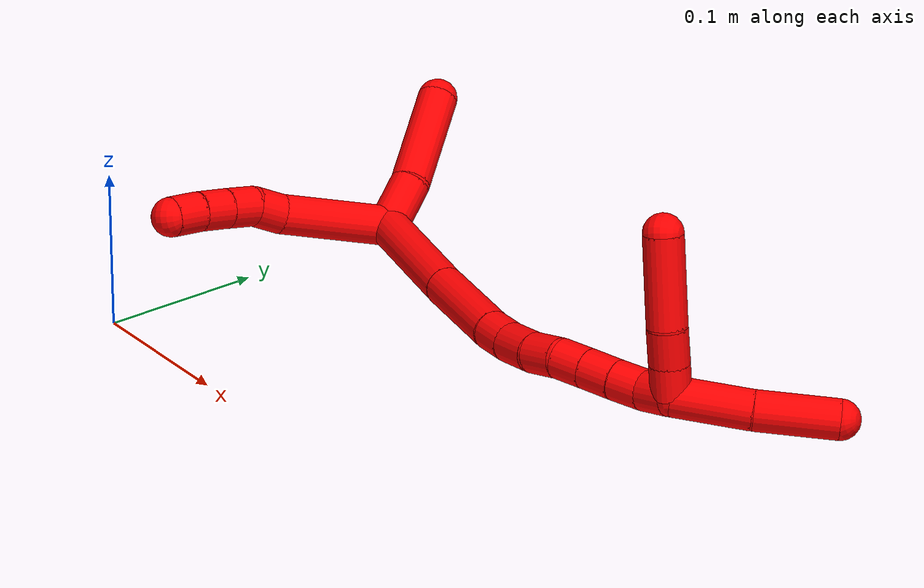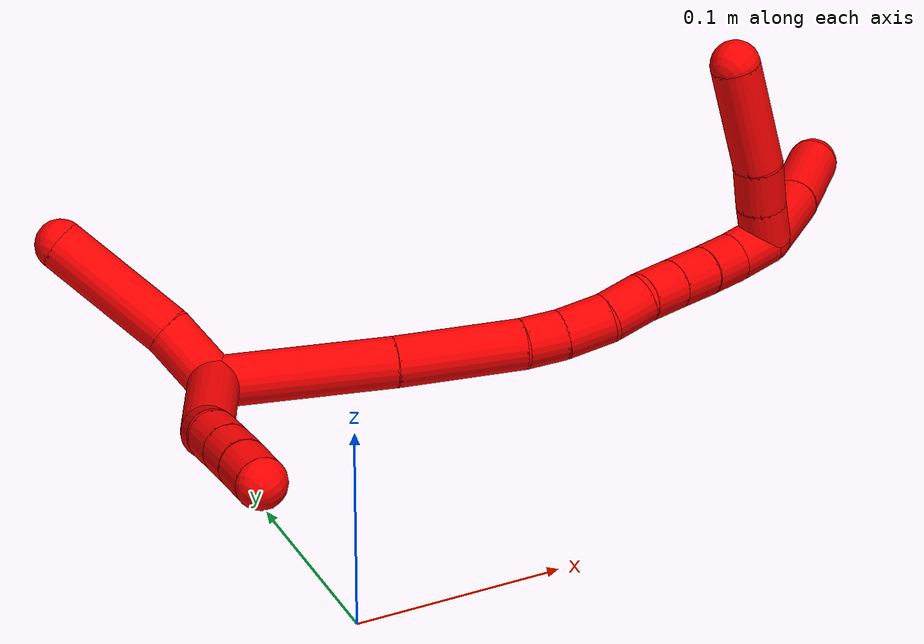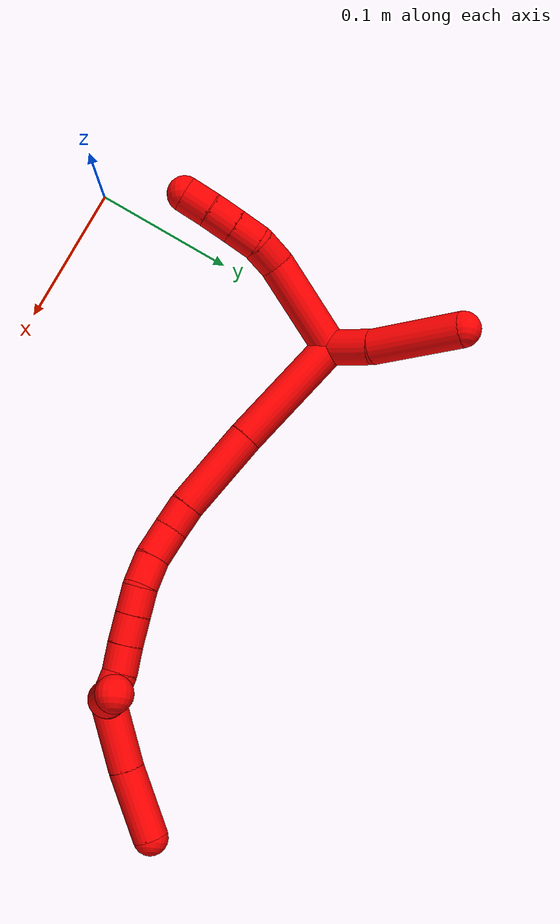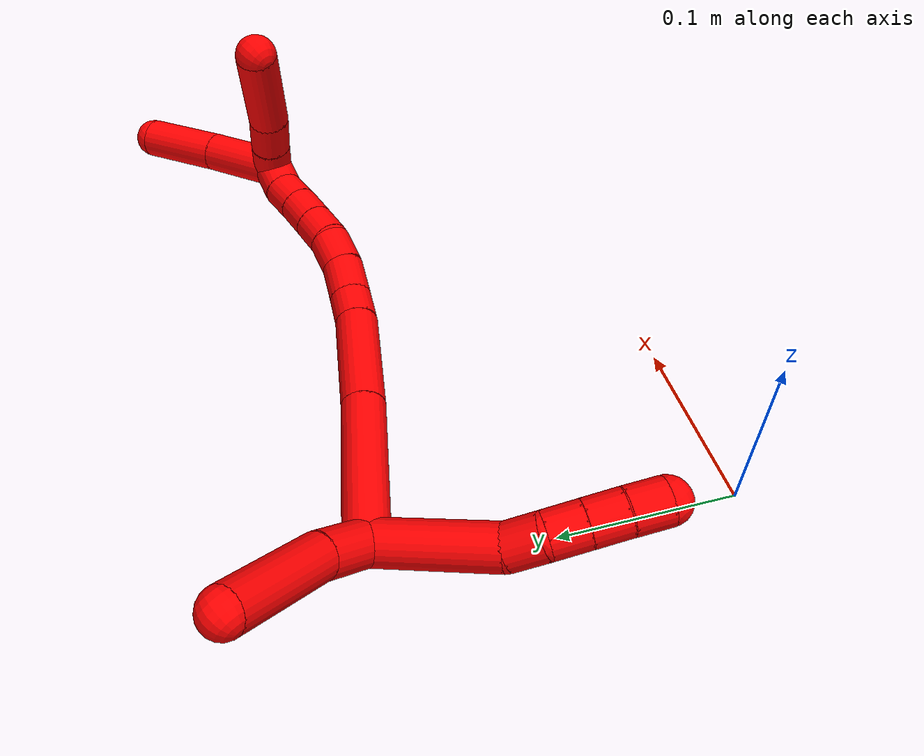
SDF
<sdf version="1.7">
 <world name="default">
  <model name="2">
   <static>0</static>
   <link name="2">
    <collision name="collision-cylinder-e_1_2_8">
     <pose>-0.011632 -0.021554 -0.024527 2.42062 -0.342219 -0.859636</pose>
     <geometry><cylinder><radius>0.0125</radius><length>0.069324</length></cylinder></geometry>
     <surface>
      <friction><ode><mu>1.16</mu><mu2>1.16</mu2><slip1>0</slip1><slip2>0</slip2></ode></friction>
      <contact><ode><kp>1e+06</kp><kd>1</kd><max_vel>0</max_vel><min_depth>0.001</min_depth></ode></contact>
     </surface>
    </collision>
    <visual name="visual-cylinder-e_1_2_8">
     <pose>-0.011632 -0.021554 -0.024527 2.42062 -0.342219 -0.859636</pose>
     <geometry><cylinder><radius>0.0125</radius><length>0.069324</length></cylinder></geometry>
     <material><ambient>1 0 0 1</ambient></material>
    </visual>
    <collision name="collision-cylinder-e_2_8_9">
     <pose>-0.028386 -0.050543 -0.053748 2.13403 -0.527475 -0.911021</pose>
     <geometry><cylinder><radius>0.0125</radius><length>0.020351</length></cylinder></geometry>
     <surface>
      <friction><ode><mu>1.16</mu><mu2>1.16</mu2><slip1>0</slip1><slip2>0</slip2></ode></friction>
      <contact><ode><kp>1e+06</kp><kd>1</kd><max_vel>0</max_vel><min_depth>0.001</min_depth></ode></contact>
     </surface>
    </collision>
    <visual name="visual-cylinder-e_2_8_9">
     <pose>-0.028386 -0.050543 -0.053748 2.13403 -0.527475 -0.911021</pose>
     <geometry><cylinder><radius>0.0125</radius><length>0.020351</length></cylinder></geometry>
     <material><ambient>1 0 0 1</ambient></material>
    </visual>
    <collision name="collision-cylinder-e_3_9_10">
     <pose>-0.035683 -0.066725 -0.062854 2.0379 -0.218562 -0.352726</pose>
     <geometry><cylinder><radius>0.0125</radius><length>0.020072</length></cylinder></geometry>
     <surface>
      <friction><ode><mu>1.16</mu><mu2>1.16</mu2><slip1>0</slip1><slip2>0</slip2></ode></friction>
      <contact><ode><kp>1e+06</kp><kd>1</kd><max_vel>0</max_vel><min_depth>0.001</min_depth></ode></contact>
     </surface>
    </collision>
    <visual name="visual-cylinder-e_3_9_10">
     <pose>-0.035683 -0.066725 -0.062854 2.0379 -0.218562 -0.352726</pose>
     <geometry><cylinder><radius>0.0125</radius><length>0.020072</length></cylinder></geometry>
     <material><ambient>1 0 0 1</ambient></material>
    </visual>
    <collision name="collision-cylinder-e_4_10_11">
     <pose>-0.039859 -0.084264 -0.071656 2.0339 -0.200742 -0.322872</pose>
     <geometry><cylinder><radius>0.0125</radius><length>0.020056</length></cylinder></geometry>
     <surface>
      <friction><ode><mu>1.16</mu><mu2>1.16</mu2><slip1>0</slip1><slip2>0</slip2></ode></friction>
      <contact><ode><kp>1e+06</kp><kd>1</kd><max_vel>0</max_vel><min_depth>0.001</min_depth></ode></contact>
     </surface>
    </collision>
    <visual name="visual-cylinder-e_4_10_11">
     <pose>-0.039859 -0.084264 -0.071656 2.0339 -0.200742 -0.322872</pose>
     <geometry><cylinder><radius>0.0125</radius><length>0.020056</length></cylinder></geometry>
     <material><ambient>1 0 0 1</ambient></material>
    </visual>
    <collision name="collision-cylinder-e_5_11_6">
     <pose>-0.043169 -0.102018 -0.080511 2.03301 -0.130149 -0.209772</pose>
     <geometry><cylinder><radius>0.0125</radius><length>0.020197</length></cylinder></geometry>
     <surface>
      <friction><ode><mu>1.16</mu><mu2>1.16</mu2><slip1>0</slip1><slip2>0</slip2></ode></friction>
      <contact><ode><kp>1e+06</kp><kd>1</kd><max_vel>0</max_vel><min_depth>0.001</min_depth></ode></contact>
     </surface>
    </collision>
    <visual name="visual-cylinder-e_5_11_6">
     <pose>-0.043169 -0.102018 -0.080511 2.03301 -0.130149 -0.209772</pose>
     <geometry><cylinder><radius>0.0125</radius><length>0.020197</length></cylinder></geometry>
     <material><ambient>1 0 0 1</ambient></material>
    </visual>
    <collision name="collision-cylinder-e_1_2_12">
     <pose>-0.009583 0.01335 0.0028 -1.36403 -0.612453 0.502609</pose>
     <geometry><cylinder><radius>0.0125</radius><length>0.033341</length></cylinder></geometry>
     <surface>
      <friction><ode><mu>1.16</mu><mu2>1.16</mu2><slip1>0</slip1><slip2>0</slip2></ode></friction>
      <contact><ode><kp>1e+06</kp><kd>1</kd><max_vel>0</max_vel><min_depth>0.001</min_depth></ode></contact>
     </surface>
    </collision>
    <visual name="visual-cylinder-e_1_2_12">
     <pose>-0.009583 0.01335 0.0028 -1.36403 -0.612453 0.502609</pose>
     <geometry><cylinder><radius>0.0125</radius><length>0.033341</length></cylinder></geometry>
     <material><ambient>1 0 0 1</ambient></material>
    </visual>
    <collision name="collision-cylinder-e_2_12_5">
     <pose>-0.03856 0.053804 0.005211 -1.58518 -0.620997 0.629413</pose>
     <geometry><cylinder><radius>0.0125</radius><length>0.066659</length></cylinder></geometry>
     <surface>
      <friction><ode><mu>1.16</mu><mu2>1.16</mu2><slip1>0</slip1><slip2>0</slip2></ode></friction>
      <contact><ode><kp>1e+06</kp><kd>1</kd><max_vel>0</max_vel><min_depth>0.001</min_depth></ode></contact>
     </surface>
    </collision>
    <visual name="visual-cylinder-e_2_12_5">
     <pose>-0.03856 0.053804 0.005211 -1.58518 -0.620997 0.629413</pose>
     <geometry><cylinder><radius>0.0125</radius><length>0.066659</length></cylinder></geometry>
     <material><ambient>1 0 0 1</ambient></material>
    </visual>
    <collision name="collision-cylinder-e_1_2_13">
     <pose>0.011339 -0.027467 0.032049 0.708555 0.262439 0.097556</pose>
     <geometry><cylinder><radius>0.0125</radius><length>0.08741</length></cylinder></geometry>
     <surface>
      <friction><ode><mu>1.16</mu><mu2>1.16</mu2><slip1>0</slip1><slip2>0</slip2></ode></friction>
      <contact><ode><kp>1e+06</kp><kd>1</kd><max_vel>0</max_vel><min_depth>0.001</min_depth></ode></contact>
     </surface>
    </collision>
    <visual name="visual-cylinder-e_1_2_13">
     <pose>0.011339 -0.027467 0.032049 0.708555 0.262439 0.097556</pose>
     <geometry><cylinder><radius>0.0125</radius><length>0.08741</length></cylinder></geometry>
     <material><ambient>1 0 0 1</ambient></material>
    </visual>
    <collision name="collision-cylinder-e_2_13_14">
     <pose>0.030832 -0.073797 0.08831 0.661874 0.259694 0.089668</pose>
     <geometry><cylinder><radius>0.0125</radius><length>0.063514</length></cylinder></geometry>
     <surface>
      <friction><ode><mu>1.16</mu><mu2>1.16</mu2><slip1>0</slip1><slip2>0</slip2></ode></friction>
      <contact><ode><kp>1e+06</kp><kd>1</kd><max_vel>0</max_vel><min_depth>0.001</min_depth></ode></contact>
     </surface>
    </collision>
    <visual name="visual-cylinder-e_2_13_14">
     <pose>0.030832 -0.073797 0.08831 0.661874 0.259694 0.089668</pose>
     <geometry><cylinder><radius>0.0125</radius><length>0.063514</length></cylinder></geometry>
     <material><ambient>1 0 0 1</ambient></material>
    </visual>
    <collision name="collision-cylinder-e_3_14_15">
     <pose>0.041352 -0.097705 0.12097 0.538285 0.235829 0.06533</pose>
     <geometry><cylinder><radius>0.0125</radius><length>0.020241</length></cylinder></geometry>
     <surface>
      <friction><ode><mu>1.16</mu><mu2>1.16</mu2><slip1>0</slip1><slip2>0</slip2></ode></friction>
      <contact><ode><kp>1e+06</kp><kd>1</kd><max_vel>0</max_vel><min_depth>0.001</min_depth></ode></contact>
     </surface>
    </collision>
    <visual name="visual-cylinder-e_3_14_15">
     <pose>0.041352 -0.097705 0.12097 0.538285 0.235829 0.06533</pose>
     <geometry><cylinder><radius>0.0125</radius><length>0.020241</length></cylinder></geometry>
     <material><ambient>1 0 0 1</ambient></material>
    </visual>
    <collision name="collision-cylinder-e_4_15_16">
     <pose>0.045142 -0.108613 0.139989 0.506409 0.11742 0.030416</pose>
     <geometry><cylinder><radius>0.0125</radius><length>0.024342</length></cylinder></geometry>
     <surface>
      <friction><ode><mu>1.16</mu><mu2>1.16</mu2><slip1>0</slip1><slip2>0</slip2></ode></friction>
      <contact><ode><kp>1e+06</kp><kd>1</kd><max_vel>0</max_vel><min_depth>0.001</min_depth></ode></contact>
     </surface>
    </collision>
    <visual name="visual-cylinder-e_4_15_16">
     <pose>0.045142 -0.108613 0.139989 0.506409 0.11742 0.030416</pose>
     <geometry><cylinder><radius>0.0125</radius><length>0.024342</length></cylinder></geometry>
     <material><ambient>1 0 0 1</ambient></material>
    </visual>
    <collision name="collision-cylinder-e_5_16_17">
     <pose>0.047366 -0.11788 0.16089 0.318381 0.073211 0.011759</pose>
     <geometry><cylinder><radius>0.0125</radius><length>0.021814</length></cylinder></geometry>
     <surface>
      <friction><ode><mu>1.16</mu><mu2>1.16</mu2><slip1>0</slip1><slip2>0</slip2></ode></friction>
      <contact><ode><kp>1e+06</kp><kd>1</kd><max_vel>0</max_vel><min_depth>0.001</min_depth></ode></contact>
     </surface>
    </collision>
    <visual name="visual-cylinder-e_5_16_17">
     <pose>0.047366 -0.11788 0.16089 0.318381 0.073211 0.011759</pose>
     <geometry><cylinder><radius>0.0125</radius><length>0.021814</length></cylinder></geometry>
     <material><ambient>1 0 0 1</ambient></material>
    </visual>
    <collision name="collision-cylinder-e_6_17_18">
     <pose>0.050955 -0.123099 0.180736 0.188372 0.280618 0.026683</pose>
     <geometry><cylinder><radius>0.0125</radius><length>0.02016</length></cylinder></geometry>
     <surface>
      <friction><ode><mu>1.16</mu><mu2>1.16</mu2><slip1>0</slip1><slip2>0</slip2></ode></friction>
      <contact><ode><kp>1e+06</kp><kd>1</kd><max_vel>0</max_vel><min_depth>0.001</min_depth></ode></contact>
     </surface>
    </collision>
    <visual name="visual-cylinder-e_6_17_18">
     <pose>0.050955 -0.123099 0.180736 0.188372 0.280618 0.026683</pose>
     <geometry><cylinder><radius>0.0125</radius><length>0.02016</length></cylinder></geometry>
     <material><ambient>1 0 0 1</ambient></material>
    </visual>
    <collision name="collision-cylinder-e_7_18_19">
     <pose>0.056794 -0.126776 0.200214 0.184815 0.291999 0.027252</pose>
     <geometry><cylinder><radius>0.0125</radius><length>0.021171</length></cylinder></geometry>
     <surface>
      <friction><ode><mu>1.16</mu><mu2>1.16</mu2><slip1>0</slip1><slip2>0</slip2></ode></friction>
      <contact><ode><kp>1e+06</kp><kd>1</kd><max_vel>0</max_vel><min_depth>0.001</min_depth></ode></contact>
     </surface>
    </collision>
    <visual name="visual-cylinder-e_7_18_19">
     <pose>0.056794 -0.126776 0.200214 0.184815 0.291999 0.027252</pose>
     <geometry><cylinder><radius>0.0125</radius><length>0.021171</length></cylinder></geometry>
     <material><ambient>1 0 0 1</ambient></material>
    </visual>
    <collision name="collision-cylinder-e_8_19_20">
     <pose>0.062826 -0.129973 0.21994 0.135812 0.294153 0.02015</pose>
     <geometry><cylinder><radius>0.0125</radius><length>0.020589</length></cylinder></geometry>
     <surface>
      <friction><ode><mu>1.16</mu><mu2>1.16</mu2><slip1>0</slip1><slip2>0</slip2></ode></friction>
      <contact><ode><kp>1e+06</kp><kd>1</kd><max_vel>0</max_vel><min_depth>0.001</min_depth></ode></contact>
     </surface>
    </collision>
    <visual name="visual-cylinder-e_8_19_20">
     <pose>0.062826 -0.129973 0.21994 0.135812 0.294153 0.02015</pose>
     <geometry><cylinder><radius>0.0125</radius><length>0.020589</length></cylinder></geometry>
     <material><ambient>1 0 0 1</ambient></material>
    </visual>
    <collision name="collision-cylinder-e_9_20_1">
     <pose>0.066589 -0.134538 0.239535 0.317486 0.075078 0.012025</pose>
     <geometry><cylinder><radius>0.0125</radius><length>0.02076</length></cylinder></geometry>
     <surface>
      <friction><ode><mu>1.16</mu><mu2>1.16</mu2><slip1>0</slip1><slip2>0</slip2></ode></friction>
      <contact><ode><kp>1e+06</kp><kd>1</kd><max_vel>0</max_vel><min_depth>0.001</min_depth></ode></contact>
     </surface>
    </collision>
    <visual name="visual-cylinder-e_9_20_1">
     <pose>0.066589 -0.134538 0.239535 0.317486 0.075078 0.012025</pose>
     <geometry><cylinder><radius>0.0125</radius><length>0.02076</length></cylinder></geometry>
     <material><ambient>1 0 0 1</ambient></material>
    </visual>
    <collision name="collision-cylinder-e_1_1_21">
     <pose>0.074941 -0.129804 0.271086 -0.351508 0.316393 -0.056645</pose>
     <geometry><cylinder><radius>0.0125</radius><length>0.048681</length></cylinder></geometry>
     <surface>
      <friction><ode><mu>1.16</mu><mu2>1.16</mu2><slip1>0</slip1><slip2>0</slip2></ode></friction>
      <contact><ode><kp>1e+06</kp><kd>1</kd><max_vel>0</max_vel><min_depth>0.001</min_depth></ode></contact>
     </surface>
    </collision>
    <visual name="visual-cylinder-e_1_1_21">
     <pose>0.074941 -0.129804 0.271086 -0.351508 0.316393 -0.056645</pose>
     <geometry><cylinder><radius>0.0125</radius><length>0.048681</length></cylinder></geometry>
     <material><ambient>1 0 0 1</ambient></material>
    </visual>
    <collision name="collision-cylinder-e_2_21_4">
     <pose>0.089377 -0.11166 0.315336 -0.424314 0.270755 -0.058662</pose>
     <geometry><cylinder><radius>0.0125</radius><length>0.051319</length></cylinder></geometry>
     <surface>
      <friction><ode><mu>1.16</mu><mu2>1.16</mu2><slip1>0</slip1><slip2>0</slip2></ode></friction>
      <contact><ode><kp>1e+06</kp><kd>1</kd><max_vel>0</max_vel><min_depth>0.001</min_depth></ode></contact>
     </surface>
    </collision>
    <visual name="visual-cylinder-e_2_21_4">
     <pose>0.089377 -0.11166 0.315336 -0.424314 0.270755 -0.058662</pose>
     <geometry><cylinder><radius>0.0125</radius><length>0.051319</length></cylinder></geometry>
     <material><ambient>1 0 0 1</ambient></material>
    </visual>
    <collision name="collision-cylinder-e_1_1_22">
     <pose>0.05727 -0.137946 0.250674 0.134503 -1.44104 -0.118133</pose>
     <geometry><cylinder><radius>0.0125</radius><length>0.020366</length></cylinder></geometry>
     <surface>
      <friction><ode><mu>1.16</mu><mu2>1.16</mu2><slip1>0</slip1><slip2>0</slip2></ode></friction>
      <contact><ode><kp>1e+06</kp><kd>1</kd><max_vel>0</max_vel><min_depth>0.001</min_depth></ode></contact>
     </surface>
    </collision>
    <visual name="visual-cylinder-e_1_1_22">
     <pose>0.05727 -0.137946 0.250674 0.134503 -1.44104 -0.118133</pose>
     <geometry><cylinder><radius>0.0125</radius><length>0.020366</length></cylinder></geometry>
     <material><ambient>1 0 0 1</ambient></material>
    </visual>
    <collision name="collision-cylinder-e_2_22_23">
     <pose>0.03573 -0.138793 0.253629 0.386211 -1.41642 -0.331852</pose>
     <geometry><cylinder><radius>0.0125</radius><length>0.023161</length></cylinder></geometry>
     <surface>
      <friction><ode><mu>1.16</mu><mu2>1.16</mu2><slip1>0</slip1><slip2>0</slip2></ode></friction>
      <contact><ode><kp>1e+06</kp><kd>1</kd><max_vel>0</max_vel><min_depth>0.001</min_depth></ode></contact>
     </surface>
    </collision>
    <visual name="visual-cylinder-e_2_22_23">
     <pose>0.03573 -0.138793 0.253629 0.386211 -1.41642 -0.331852</pose>
     <geometry><cylinder><radius>0.0125</radius><length>0.023161</length></cylinder></geometry>
     <material><ambient>1 0 0 1</ambient></material>
    </visual>
    <collision name="collision-cylinder-e_3_23_3">
     <pose>-0.003726 -0.137431 0.258186 -0.610184 -1.44484 0.541491</pose>
     <geometry><cylinder><radius>0.0125</radius><length>0.056473</length></cylinder></geometry>
     <surface>
      <friction><ode><mu>1.16</mu><mu2>1.16</mu2><slip1>0</slip1><slip2>0</slip2></ode></friction>
      <contact><ode><kp>1e+06</kp><kd>1</kd><max_vel>0</max_vel><min_depth>0.001</min_depth></ode></contact>
     </surface>
    </collision>
    <visual name="visual-cylinder-e_3_23_3">
     <pose>-0.003726 -0.137431 0.258186 -0.610184 -1.44484 0.541491</pose>
     <geometry><cylinder><radius>0.0125</radius><length>0.056473</length></cylinder></geometry>
     <material><ambient>1 0 0 1</ambient></material>
    </visual>
    <collision name="collision-sphere-3">
     <pose>-0.031739 -0.135399 0.261093 0 -0 0</pose>
     <geometry><sphere><radius>0.0125</radius></sphere></geometry>
     <surface>
      <friction><ode><mu>1.16</mu><mu2>1.16</mu2><slip1>0</slip1><slip2>0</slip2></ode></friction>
      <contact><ode><kp>1e+06</kp><kd>1</kd><max_vel>0</max_vel><min_depth>0.001</min_depth></ode></contact>
     </surface>
    </collision>
    <visual name="visual-sphere-3">
     <pose>-0.031739 -0.135399 0.261093 0 -0 0</pose>
     <geometry><sphere><radius>0.0125</radius></sphere></geometry>
     <material><ambient>1 0 0 1</ambient></material>
    </visual>
    <collision name="collision-sphere-23">
     <pose>0.024287 -0.139464 0.255279 0 -0 0</pose>
     <geometry><sphere><radius>0.0125</radius></sphere></geometry>
     <surface>
      <friction><ode><mu>1.16</mu><mu2>1.16</mu2><slip1>0</slip1><slip2>0</slip2></ode></friction>
      <contact><ode><kp>1e+06</kp><kd>1</kd><max_vel>0</max_vel><min_depth>0.001</min_depth></ode></contact>
     </surface>
    </collision>
    <visual name="visual-sphere-23">
     <pose>0.024287 -0.139464 0.255279 0 -0 0</pose>
     <geometry><sphere><radius>0.0125</radius></sphere></geometry>
     <material><ambient>1 0 0 1</ambient></material>
    </visual>
    <collision name="collision-sphere-22">
     <pose>0.047172 -0.138122 0.25198 0 -0 0</pose>
     <geometry><sphere><radius>0.0125</radius></sphere></geometry>
     <surface>
      <friction><ode><mu>1.16</mu><mu2>1.16</mu2><slip1>0</slip1><slip2>0</slip2></ode></friction>
      <contact><ode><kp>1e+06</kp><kd>1</kd><max_vel>0</max_vel><min_depth>0.001</min_depth></ode></contact>
     </surface>
    </collision>
    <visual name="visual-sphere-22">
     <pose>0.047172 -0.138122 0.25198 0 -0 0</pose>
     <geometry><sphere><radius>0.0125</radius></sphere></geometry>
     <material><ambient>1 0 0 1</ambient></material>
    </visual>
    <collision name="collision-sphere-4">
     <pose>0.09624 -0.101481 0.337868 0 -0 0</pose>
     <geometry><sphere><radius>0.0125</radius></sphere></geometry>
     <surface>
      <friction><ode><mu>1.16</mu><mu2>1.16</mu2><slip1>0</slip1><slip2>0</slip2></ode></friction>
      <contact><ode><kp>1e+06</kp><kd>1</kd><max_vel>0</max_vel><min_depth>0.001</min_depth></ode></contact>
     </surface>
    </collision>
    <visual name="visual-sphere-4">
     <pose>0.09624 -0.101481 0.337868 0 -0 0</pose>
     <geometry><sphere><radius>0.0125</radius></sphere></geometry>
     <material><ambient>1 0 0 1</ambient></material>
    </visual>
    <collision name="collision-sphere-21">
     <pose>0.082514 -0.121839 0.292804 0 -0 0</pose>
     <geometry><sphere><radius>0.0125</radius></sphere></geometry>
     <surface>
      <friction><ode><mu>1.16</mu><mu2>1.16</mu2><slip1>0</slip1><slip2>0</slip2></ode></friction>
      <contact><ode><kp>1e+06</kp><kd>1</kd><max_vel>0</max_vel><min_depth>0.001</min_depth></ode></contact>
     </surface>
    </collision>
    <visual name="visual-sphere-21">
     <pose>0.082514 -0.121839 0.292804 0 -0 0</pose>
     <geometry><sphere><radius>0.0125</radius></sphere></geometry>
     <material><ambient>1 0 0 1</ambient></material>
    </visual>
    <collision name="collision-sphere-1">
     <pose>0.067367 -0.137769 0.249368 0 -0 0</pose>
     <geometry><sphere><radius>0.0125</radius></sphere></geometry>
     <surface>
      <friction><ode><mu>1.16</mu><mu2>1.16</mu2><slip1>0</slip1><slip2>0</slip2></ode></friction>
      <contact><ode><kp>1e+06</kp><kd>1</kd><max_vel>0</max_vel><min_depth>0.001</min_depth></ode></contact>
     </surface>
    </collision>
    <visual name="visual-sphere-1">
     <pose>0.067367 -0.137769 0.249368 0 -0 0</pose>
     <geometry><sphere><radius>0.0125</radius></sphere></geometry>
     <material><ambient>1 0 0 1</ambient></material>
    </visual>
    <collision name="collision-sphere-6">
     <pose>-0.04448 -0.110981 -0.084976 0 -0 0</pose>
     <geometry><sphere><radius>0.0125</radius></sphere></geometry>
     <surface>
      <friction><ode><mu>1.16</mu><mu2>1.16</mu2><slip1>0</slip1><slip2>0</slip2></ode></friction>
      <contact><ode><kp>1e+06</kp><kd>1</kd><max_vel>0</max_vel><min_depth>0.001</min_depth></ode></contact>
     </surface>
    </collision>
    <visual name="visual-sphere-6">
     <pose>-0.04448 -0.110981 -0.084976 0 -0 0</pose>
     <geometry><sphere><radius>0.0125</radius></sphere></geometry>
     <material><ambient>1 0 0 1</ambient></material>
    </visual>
    <collision name="collision-sphere-11">
     <pose>-0.041859 -0.093056 -0.076046 0 -0 0</pose>
     <geometry><sphere><radius>0.0125</radius></sphere></geometry>
     <surface>
      <friction><ode><mu>1.16</mu><mu2>1.16</mu2><slip1>0</slip1><slip2>0</slip2></ode></friction>
      <contact><ode><kp>1e+06</kp><kd>1</kd><max_vel>0</max_vel><min_depth>0.001</min_depth></ode></contact>
     </surface>
    </collision>
    <visual name="visual-sphere-11">
     <pose>-0.041859 -0.093056 -0.076046 0 -0 0</pose>
     <geometry><sphere><radius>0.0125</radius></sphere></geometry>
     <material><ambient>1 0 0 1</ambient></material>
    </visual>
    <collision name="collision-sphere-10">
     <pose>-0.037859 -0.075472 -0.067266 0 -0 0</pose>
     <geometry><sphere><radius>0.0125</radius></sphere></geometry>
     <surface>
      <friction><ode><mu>1.16</mu><mu2>1.16</mu2><slip1>0</slip1><slip2>0</slip2></ode></friction>
      <contact><ode><kp>1e+06</kp><kd>1</kd><max_vel>0</max_vel><min_depth>0.001</min_depth></ode></contact>
     </surface>
    </collision>
    <visual name="visual-sphere-10">
     <pose>-0.037859 -0.075472 -0.067266 0 -0 0</pose>
     <geometry><sphere><radius>0.0125</radius></sphere></geometry>
     <material><ambient>1 0 0 1</ambient></material>
    </visual>
    <collision name="collision-sphere-9">
     <pose>-0.033507 -0.057977 -0.058443 0 -0 0</pose>
     <geometry><sphere><radius>0.0125</radius></sphere></geometry>
     <surface>
      <friction><ode><mu>1.16</mu><mu2>1.16</mu2><slip1>0</slip1><slip2>0</slip2></ode></friction>
      <contact><ode><kp>1e+06</kp><kd>1</kd><max_vel>0</max_vel><min_depth>0.001</min_depth></ode></contact>
     </surface>
    </collision>
    <visual name="visual-sphere-9">
     <pose>-0.033507 -0.057977 -0.058443 0 -0 0</pose>
     <geometry><sphere><radius>0.0125</radius></sphere></geometry>
     <material><ambient>1 0 0 1</ambient></material>
    </visual>
    <collision name="collision-sphere-2">
     <geometry><sphere><radius>0.0125</radius></sphere></geometry>
     <surface>
      <friction><ode><mu>1.16</mu><mu2>1.16</mu2><slip1>0</slip1><slip2>0</slip2></ode></friction>
      <contact><ode><kp>1e+06</kp><kd>1</kd><max_vel>0</max_vel><min_depth>0.001</min_depth></ode></contact>
     </surface>
    </collision>
    <visual name="visual-sphere-2">
     <geometry><sphere><radius>0.0125</radius></sphere></geometry>
     <material><ambient>1 0 0 1</ambient></material>
    </visual>
    <collision name="collision-sphere-19">
     <pose>0.059841 -0.128639 0.210179 0 -0 0</pose>
     <geometry><sphere><radius>0.0125</radius></sphere></geometry>
     <surface>
      <friction><ode><mu>1.16</mu><mu2>1.16</mu2><slip1>0</slip1><slip2>0</slip2></ode></friction>
      <contact><ode><kp>1e+06</kp><kd>1</kd><max_vel>0</max_vel><min_depth>0.001</min_depth></ode></contact>
     </surface>
    </collision>
    <visual name="visual-sphere-19">
     <pose>0.059841 -0.128639 0.210179 0 -0 0</pose>
     <geometry><sphere><radius>0.0125</radius></sphere></geometry>
     <material><ambient>1 0 0 1</ambient></material>
    </visual>
    <collision name="collision-sphere-8">
     <pose>-0.023264 -0.043109 -0.049054 0 -0 0</pose>
     <geometry><sphere><radius>0.0125</radius></sphere></geometry>
     <surface>
      <friction><ode><mu>1.16</mu><mu2>1.16</mu2><slip1>0</slip1><slip2>0</slip2></ode></friction>
      <contact><ode><kp>1e+06</kp><kd>1</kd><max_vel>0</max_vel><min_depth>0.001</min_depth></ode></contact>
     </surface>
    </collision>
    <visual name="visual-sphere-8">
     <pose>-0.023264 -0.043109 -0.049054 0 -0 0</pose>
     <geometry><sphere><radius>0.0125</radius></sphere></geometry>
     <material><ambient>1 0 0 1</ambient></material>
    </visual>
    <collision name="collision-sphere-12">
     <pose>-0.019167 0.0267 0.005601 0 -0 0</pose>
     <geometry><sphere><radius>0.0125</radius></sphere></geometry>
     <surface>
      <friction><ode><mu>1.16</mu><mu2>1.16</mu2><slip1>0</slip1><slip2>0</slip2></ode></friction>
      <contact><ode><kp>1e+06</kp><kd>1</kd><max_vel>0</max_vel><min_depth>0.001</min_depth></ode></contact>
     </surface>
    </collision>
    <visual name="visual-sphere-12">
     <pose>-0.019167 0.0267 0.005601 0 -0 0</pose>
     <geometry><sphere><radius>0.0125</radius></sphere></geometry>
     <material><ambient>1 0 0 1</ambient></material>
    </visual>
    <collision name="collision-sphere-5">
     <pose>-0.057952 0.080908 0.004821 0 -0 0</pose>
     <geometry><sphere><radius>0.0125</radius></sphere></geometry>
     <surface>
      <friction><ode><mu>1.16</mu><mu2>1.16</mu2><slip1>0</slip1><slip2>0</slip2></ode></friction>
      <contact><ode><kp>1e+06</kp><kd>1</kd><max_vel>0</max_vel><min_depth>0.001</min_depth></ode></contact>
     </surface>
    </collision>
    <visual name="visual-sphere-5">
     <pose>-0.057952 0.080908 0.004821 0 -0 0</pose>
     <geometry><sphere><radius>0.0125</radius></sphere></geometry>
     <material><ambient>1 0 0 1</ambient></material>
    </visual>
    <collision name="collision-sphere-13">
     <pose>0.022678 -0.054934 0.064098 0 -0 0</pose>
     <geometry><sphere><radius>0.0125</radius></sphere></geometry>
     <surface>
      <friction><ode><mu>1.16</mu><mu2>1.16</mu2><slip1>0</slip1><slip2>0</slip2></ode></friction>
      <contact><ode><kp>1e+06</kp><kd>1</kd><max_vel>0</max_vel><min_depth>0.001</min_depth></ode></contact>
     </surface>
    </collision>
    <visual name="visual-sphere-13">
     <pose>0.022678 -0.054934 0.064098 0 -0 0</pose>
     <geometry><sphere><radius>0.0125</radius></sphere></geometry>
     <material><ambient>1 0 0 1</ambient></material>
    </visual>
    <collision name="collision-sphere-14">
     <pose>0.038987 -0.09266 0.112521 0 -0 0</pose>
     <geometry><sphere><radius>0.0125</radius></sphere></geometry>
     <surface>
      <friction><ode><mu>1.16</mu><mu2>1.16</mu2><slip1>0</slip1><slip2>0</slip2></ode></friction>
      <contact><ode><kp>1e+06</kp><kd>1</kd><max_vel>0</max_vel><min_depth>0.001</min_depth></ode></contact>
     </surface>
    </collision>
    <visual name="visual-sphere-14">
     <pose>0.038987 -0.09266 0.112521 0 -0 0</pose>
     <geometry><sphere><radius>0.0125</radius></sphere></geometry>
     <material><ambient>1 0 0 1</ambient></material>
    </visual>
    <collision name="collision-sphere-15">
     <pose>0.043716 -0.10275 0.129419 0 -0 0</pose>
     <geometry><sphere><radius>0.0125</radius></sphere></geometry>
     <surface>
      <friction><ode><mu>1.16</mu><mu2>1.16</mu2><slip1>0</slip1><slip2>0</slip2></ode></friction>
      <contact><ode><kp>1e+06</kp><kd>1</kd><max_vel>0</max_vel><min_depth>0.001</min_depth></ode></contact>
     </surface>
    </collision>
    <visual name="visual-sphere-15">
     <pose>0.043716 -0.10275 0.129419 0 -0 0</pose>
     <geometry><sphere><radius>0.0125</radius></sphere></geometry>
     <material><ambient>1 0 0 1</ambient></material>
    </visual>
    <collision name="collision-sphere-16">
     <pose>0.046568 -0.114475 0.150559 0 -0 0</pose>
     <geometry><sphere><radius>0.0125</radius></sphere></geometry>
     <surface>
      <friction><ode><mu>1.16</mu><mu2>1.16</mu2><slip1>0</slip1><slip2>0</slip2></ode></friction>
      <contact><ode><kp>1e+06</kp><kd>1</kd><max_vel>0</max_vel><min_depth>0.001</min_depth></ode></contact>
     </surface>
    </collision>
    <visual name="visual-sphere-16">
     <pose>0.046568 -0.114475 0.150559 0 -0 0</pose>
     <geometry><sphere><radius>0.0125</radius></sphere></geometry>
     <material><ambient>1 0 0 1</ambient></material>
    </visual>
    <collision name="collision-sphere-17">
     <pose>0.048163 -0.121286 0.171221 0 -0 0</pose>
     <geometry><sphere><radius>0.0125</radius></sphere></geometry>
     <surface>
      <friction><ode><mu>1.16</mu><mu2>1.16</mu2><slip1>0</slip1><slip2>0</slip2></ode></friction>
      <contact><ode><kp>1e+06</kp><kd>1</kd><max_vel>0</max_vel><min_depth>0.001</min_depth></ode></contact>
     </surface>
    </collision>
    <visual name="visual-sphere-17">
     <pose>0.048163 -0.121286 0.171221 0 -0 0</pose>
     <geometry><sphere><radius>0.0125</radius></sphere></geometry>
     <material><ambient>1 0 0 1</ambient></material>
    </visual>
    <collision name="collision-sphere-18">
     <pose>0.053747 -0.124913 0.19025 0 -0 0</pose>
     <geometry><sphere><radius>0.0125</radius></sphere></geometry>
     <surface>
      <friction><ode><mu>1.16</mu><mu2>1.16</mu2><slip1>0</slip1><slip2>0</slip2></ode></friction>
      <contact><ode><kp>1e+06</kp><kd>1</kd><max_vel>0</max_vel><min_depth>0.001</min_depth></ode></contact>
     </surface>
    </collision>
    <visual name="visual-sphere-18">
     <pose>0.053747 -0.124913 0.19025 0 -0 0</pose>
     <geometry><sphere><radius>0.0125</radius></sphere></geometry>
     <material><ambient>1 0 0 1</ambient></material>
    </visual>
    <collision name="collision-sphere-20">
     <pose>0.06581 -0.131307 0.229702 0 -0 0</pose>
     <geometry><sphere><radius>0.0125</radius></sphere></geometry>
     <surface>
      <friction><ode><mu>1.16</mu><mu2>1.16</mu2><slip1>0</slip1><slip2>0</slip2></ode></friction>
      <contact><ode><kp>1e+06</kp><kd>1</kd><max_vel>0</max_vel><min_depth>0.001</min_depth></ode></contact>
     </surface>
    </collision>
    <visual name="visual-sphere-20">
     <pose>0.06581 -0.131307 0.229702 0 -0 0</pose>
     <geometry><sphere><radius>0.0125</radius></sphere></geometry>
     <material><ambient>1 0 0 1</ambient></material>
    </visual>
    <inertial>
     <pose>0.018908 -0.072441 0.111227 0 -0 0</pose>
     <mass>0.75</mass>
     <inertia>
      <ixx>0.000152</ixx>
      <ixy>0</ixy>
      <ixz>0</ixz>
      <iyy>0.000107</iyy>
      <iyz>0</iyz>
      <izz>8.4e-05</izz>
     </inertia>
    </inertial>
   </link>
   <pose>0.014992 0.19563 0.012498 -0.408271 1.30554 0.065907</pose>
  </model>
 </world>
</sdf>
